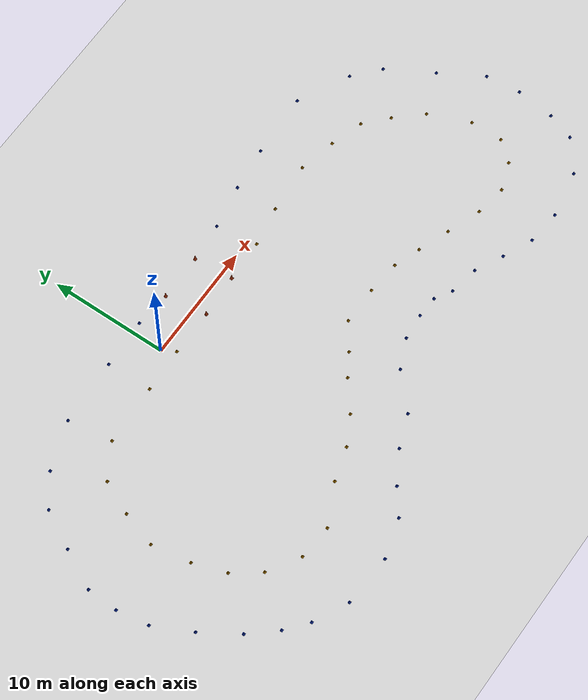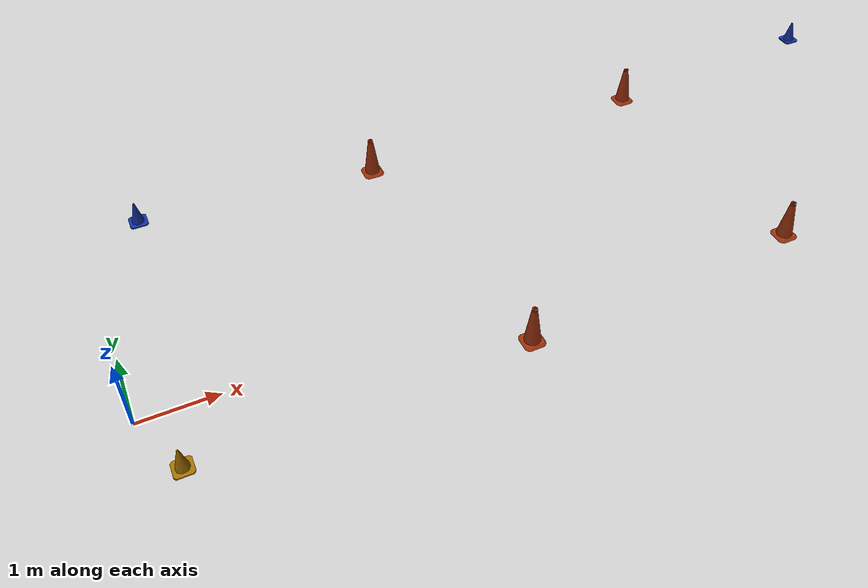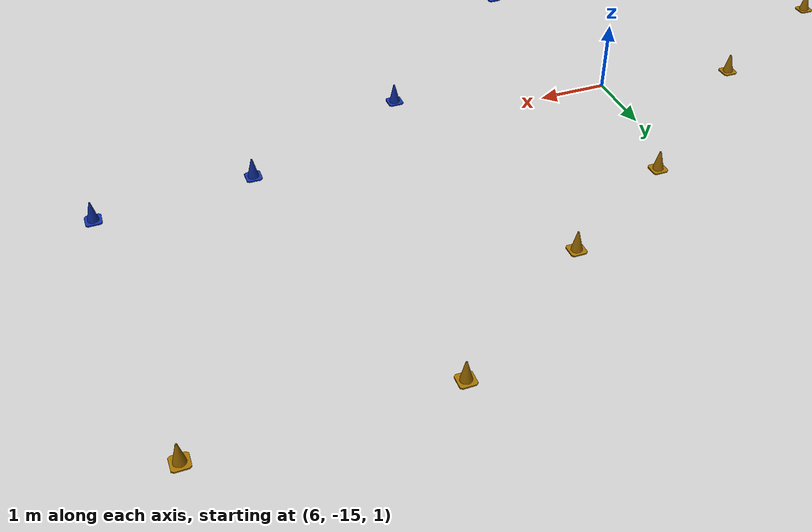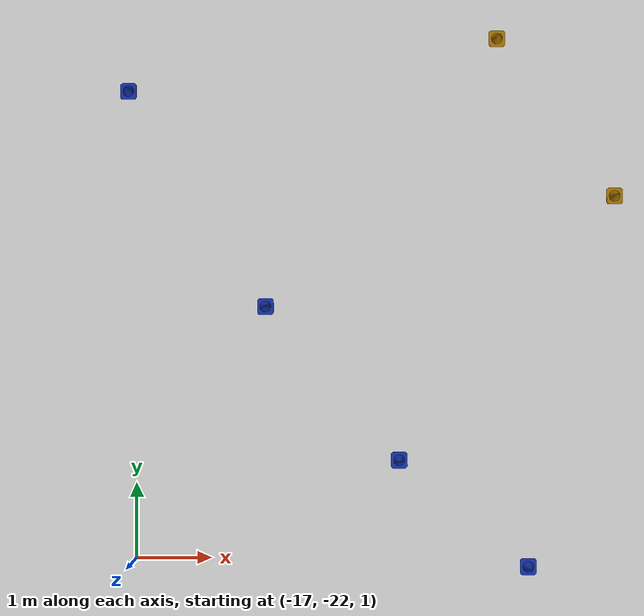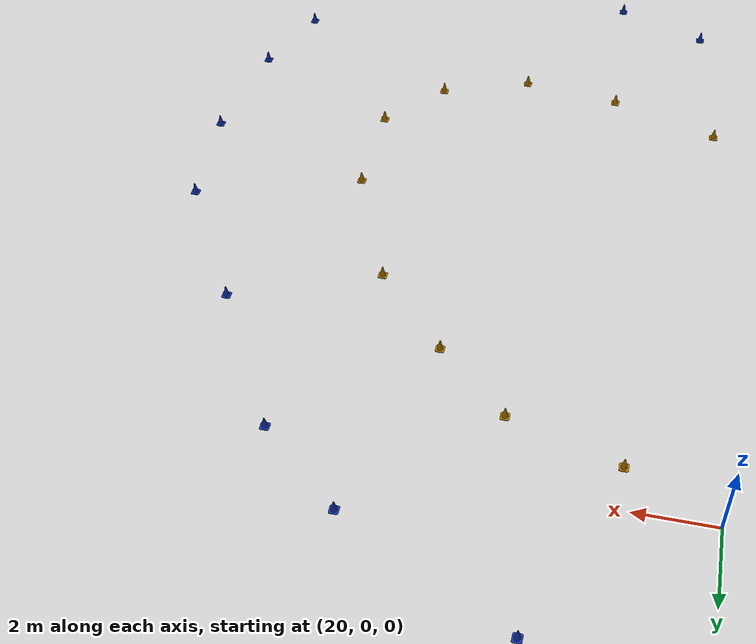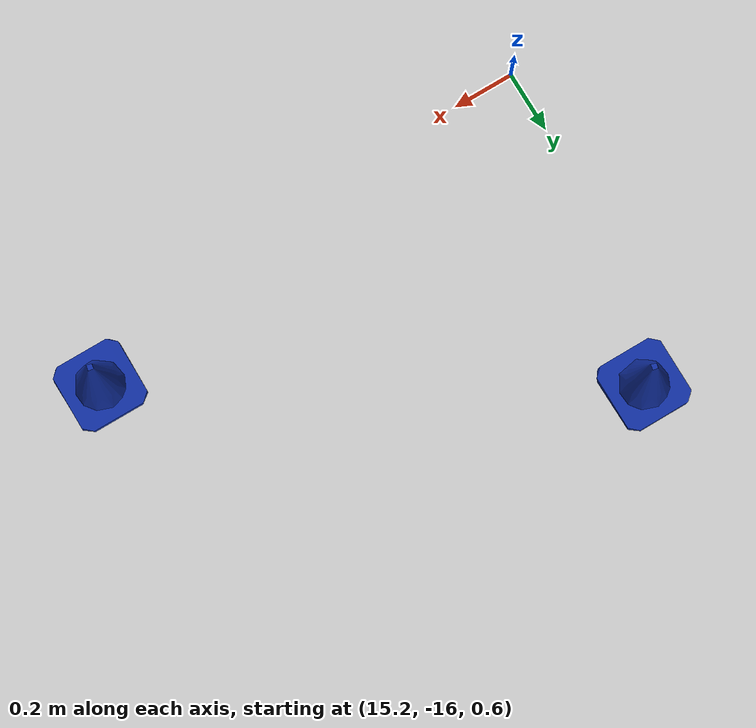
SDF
<sdf version='1.6'>
  <world name='B_shape_02_03_2023'>
    <gui fullscreen='0'>
      <camera name='user_camera'>
        <pose frame=''>-40 40 20 0 0.667643 -1</pose>
        <view_controller>orbit</view_controller>
        <projection_type>perspective</projection_type>
      </camera>
    </gui>

    <!-- WORLD SETTINGS -->
    <scene>
      <ambient>1.0 1.0 1.0 1.0</ambient>
      <shadows>false</shadows>
    </scene>

    <spherical_coordinates>
      <heading_deg>180</heading_deg>

      <!-- Appleton Tower coordinates -->
      <latitude_deg>-27.69056</latitude_deg>
      <longitude_deg>152.656715</longitude_deg>
    </spherical_coordinates>

    <light name='sun' type='directional'>
      <cast_shadows>1</cast_shadows>
      <pose frame=''>0 0 10 0 -0 0</pose>
      <diffuse>0.8 0.8 0.8 1</diffuse>
      <specular>0.1 0.1 0.1 1</specular>
      <attenuation>
        <range>1000</range>
        <constant>0.9</constant>
        <linear>0.01</linear>
        <quadratic>0.001</quadratic>
      </attenuation>
      <direction>-0.5 0.5 -1</direction>
    </light>

    <!-- MODELS -->
    <include>
      <uri>model://ground_plane</uri>
      <pose>0.0 0.0 0.0 0 0 0</pose>
    </include>

    <include>
      <uri>model://B_shape_02_03_2023</uri>
      <pose>0 0 0.5 0 0 0</pose>
    </include>

  </world>
</sdf>

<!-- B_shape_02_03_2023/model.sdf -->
<sdf version='1.6'>
  <model name='track'>

    <include>
      <pose>8.887313479968094 -16.183617006526468 0.15 0 0 0</pose>
      <uri>model://blue_cone</uri>
      <name>blue_cone_0</name>

      <covariance x="0.1" y="0.1" xy="0"/>

    </include>

    <include>
      <pose>11.355381936956617 -15.078430863667466 0.15 0 0 0</pose>
      <uri>model://blue_cone</uri>
      <name>blue_cone_1</name>

      <covariance x="0.1" y="0.1" xy="0"/>

    </include>

    <include>
      <pose>6.129761087675673 -18.71671183658031 0.15 0 0 0</pose>
      <uri>model://blue_cone</uri>
      <name>blue_cone_2</name>

      <covariance x="0.1" y="0.1" xy="0"/>

    </include>

    <include>
      <pose>10.97108972454437 2.540551507268548 0.15 0 0 0</pose>
      <uri>model://blue_cone</uri>
      <name>blue_cone_3</name>

      <covariance x="0.1" y="0.1" xy="0"/>

    </include>

    <include>
      <pose>14.705757930120129 3.200382692569994 0.15 0 0 0</pose>
      <uri>model://blue_cone</uri>
      <name>blue_cone_4</name>

      <covariance x="0.1" y="0.1" xy="0"/>

    </include>

    <include>
      <pose>19.224267913437014 -16.223076266818254 0.15 0 0 0</pose>
      <uri>model://blue_cone</uri>
      <name>blue_cone_5</name>

      <covariance x="0.1" y="0.1" xy="0"/>

    </include>

    <include>
      <pose>13.555598803293863 -14.882089361770092 0.15 0 0 0</pose>
      <uri>model://blue_cone</uri>
      <name>blue_cone_6</name>

      <covariance x="0.1" y="0.1" xy="0"/>

    </include>

    <include>
      <pose>18.46512911431677 3.611936681390391 0.15 0 0 0</pose>
      <uri>model://blue_cone</uri>
      <name>blue_cone_7</name>

      <covariance x="0.1" y="0.1" xy="0"/>

    </include>

    <include>
      <pose>23.91557182886033 3.8447500610152714 0.15 0 0 0</pose>
      <uri>model://blue_cone</uri>
      <name>blue_cone_8</name>

      <covariance x="0.1" y="0.1" xy="0"/>

    </include>

    <include>
      <pose>21.53205070095937 -17.365783738526847 0.15 0 0 0</pose>
      <uri>model://blue_cone</uri>
      <name>blue_cone_9</name>

      <covariance x="0.1" y="0.1" xy="0"/>

    </include>

    <include>
      <pose>24.010217328592844 -18.458147981563787 0.15 0 0 0</pose>
      <uri>model://blue_cone</uri>
      <name>blue_cone_10</name>

      <covariance x="0.1" y="0.1" xy="0"/>

    </include>

    <include>
      <pose>30.30289956167453 -0.1520733119067148 0.15 0 0 0</pose>
      <uri>model://blue_cone</uri>
      <name>blue_cone_11</name>

      <covariance x="0.1" y="0.1" xy="0"/>

    </include>

    <include>
      <pose>28.202054858865274 1.6908487523626712 0.15 0 0 0</pose>
      <uri>model://blue_cone</uri>
      <name>blue_cone_12</name>

      <covariance x="0.1" y="0.1" xy="0"/>

    </include>

    <include>
      <pose>26.89986541691906 -18.73171205684963 0.15 0 0 0</pose>
      <uri>model://blue_cone</uri>
      <name>blue_cone_13</name>

      <covariance x="0.1" y="0.1" xy="0"/>

    </include>

    <include>
      <pose>32.44616829553408 -3.89350957027444 0.15 0 0 0</pose>
      <uri>model://blue_cone</uri>
      <name>blue_cone_14</name>

      <covariance x="0.1" y="0.1" xy="0"/>

    </include>

    <include>
      <pose>34.488565067148585 -7.420996699019813 0.15 0 0 0</pose>
      <uri>model://blue_cone</uri>
      <name>blue_cone_15</name>

      <covariance x="0.1" y="0.1" xy="0"/>

    </include>

    <include>
      <pose>30.893993117717656 -17.971382646359388 0.15 0 0 0</pose>
      <uri>model://blue_cone</uri>
      <name>blue_cone_16</name>

      <covariance x="0.1" y="0.1" xy="0"/>

    </include>

    <include>
      <pose>33.51427802876749 -15.954001022219344 0.15 0 0 0</pose>
      <uri>model://blue_cone</uri>
      <name>blue_cone_17</name>

      <covariance x="0.1" y="0.1" xy="0"/>

    </include>

    <include>
      <pose>34.334464677092946 -13.649916759117772 0.15 0 0 0</pose>
      <uri>model://blue_cone</uri>
      <name>blue_cone_18</name>

      <covariance x="0.1" y="0.1" xy="0"/>

    </include>

    <include>
      <pose>34.764652698345984 -10.376504859684642 0.15 0 0 0</pose>
      <uri>model://blue_cone</uri>
      <name>blue_cone_19</name>

      <covariance x="0.1" y="0.1" xy="0"/>

    </include>

    <include>
      <pose>16.752195360163245 -15.79402649685101 0.15 0 0 0</pose>
      <uri>model://blue_cone</uri>
      <name>blue_cone_20</name>

      <covariance x="0.1" y="0.1" xy="0"/>

    </include>

    <include>
      <pose>15.371102133759388 -14.972401310864552 0.15 0 0 0</pose>
      <uri>model://blue_cone</uri>
      <name>blue_cone_21</name>

      <covariance x="0.1" y="0.1" xy="0"/>

    </include>

    <include>
      <pose>0.7479325607489322 -21.335229593444485 0.15 0 0 0</pose>
      <uri>model://blue_cone</uri>
      <name>blue_cone_22</name>

      <covariance x="0.1" y="0.1" xy="0"/>

    </include>

    <include>
      <pose>3.38286758891689 -19.78099268128012 0.15 0 0 0</pose>
      <uri>model://blue_cone</uri>
      <name>blue_cone_23</name>

      <covariance x="0.1" y="0.1" xy="0"/>

    </include>

    <include>
      <pose>-1.2972460496698035 -22.875287201913828 0.15 0 0 0</pose>
      <uri>model://blue_cone</uri>
      <name>blue_cone_24</name>

      <covariance x="0.1" y="0.1" xy="0"/>

    </include>

    <include>
      <pose>-4.582756564795467 -23.84405256174741 0.15 0 0 0</pose>
      <uri>model://blue_cone</uri>
      <name>blue_cone_25</name>

      <covariance x="0.1" y="0.1" xy="0"/>

    </include>

    <include>
      <pose>-8.87564627129861 -23.59748415390764 0.15 0 0 0</pose>
      <uri>model://blue_cone</uri>
      <name>blue_cone_26</name>

      <covariance x="0.1" y="0.1" xy="0"/>

    </include>

    <include>
      <pose>-17.31221143829038 -4.100999614205691 0.15 0 0 0</pose>
      <uri>model://blue_cone</uri>
      <name>blue_cone_27</name>

      <covariance x="0.1" y="0.1" xy="0"/>

    </include>

    <include>
      <pose>-17.166935666788472 -15.653699236050224 0.15 0 0 0</pose>
      <uri>model://blue_cone</uri>
      <name>blue_cone_28</name>

      <covariance x="0.1" y="0.1" xy="0"/>

    </include>

    <include>
      <pose>-15.287665294782336 -18.63537345200825 0.15 0 0 0</pose>
      <uri>model://blue_cone</uri>
      <name>blue_cone_29</name>

      <covariance x="0.1" y="0.1" xy="0"/>

    </include>

    <include>
      <pose>-18.97964032983754 -7.267119402834996 0.15 0 0 0</pose>
      <uri>model://blue_cone</uri>
      <name>blue_cone_30</name>

      <covariance x="0.1" y="0.1" xy="0"/>

    </include>

    <include>
      <pose>-13.46889059902812 -20.746073927804503 0.15 0 0 0</pose>
      <uri>model://blue_cone</uri>
      <name>blue_cone_31</name>

      <covariance x="0.1" y="0.1" xy="0"/>

    </include>

    <include>
      <pose>-18.684962461727324 -12.54920287759169 0.15 0 0 0</pose>
      <uri>model://blue_cone</uri>
      <name>blue_cone_32</name>

      <covariance x="0.1" y="0.1" xy="0"/>

    </include>

    <include>
      <pose>-11.723341671996511 -22.1994189693695 0.15 0 0 0</pose>
      <uri>model://blue_cone</uri>
      <name>blue_cone_33</name>

      <covariance x="0.1" y="0.1" xy="0"/>

    </include>

    <include>
      <pose>-19.102566912414304 -9.87990988065231 0.15 0 0 0</pose>
      <uri>model://blue_cone</uri>
      <name>blue_cone_34</name>

      <covariance x="0.1" y="0.1" xy="0"/>

    </include>

    <include>
      <pose>-15.605626367242976 -1.0606907686041755 0.15 0 0 0</pose>
      <uri>model://blue_cone</uri>
      <name>blue_cone_35</name>

      <covariance x="0.1" y="0.1" xy="0"/>

    </include>

    <include>
      <pose>-3.449828718013473 2.3890296989523727 0.15 0 0 0</pose>
      <uri>model://blue_cone</uri>
      <name>blue_cone_36</name>

      <covariance x="0.1" y="0.1" xy="0"/>

    </include>

    <include>
      <pose>-13.045736526819809 0.744502726286732 0.15 0 0 0</pose>
      <uri>model://blue_cone</uri>
      <name>blue_cone_37</name>

      <covariance x="0.1" y="0.1" xy="0"/>

    </include>

    <include>
      <pose>-8.97648601950662 2.1308191948487107 0.15 0 0 0</pose>
      <uri>model://blue_cone</uri>
      <name>blue_cone_38</name>

      <covariance x="0.1" y="0.1" xy="0"/>

    </include>

    <include>
      <pose>0.6979783031949934 2.535245398878675 0.15 0 0 0</pose>
      <uri>model://blue_cone</uri>
      <name>blue_cone_39</name>

      <covariance x="0.1" y="0.1" xy="0"/>

    </include>

    <include>
      <pose>11.468472458131686 -0.9360001125060364 0.15 0 0 0</pose>
      <uri>model://yellow_cone</uri>
      <name>yellow_cone_40</name>

      <covariance x="0.1" y="0.1" xy="0"/>

    </include>

    <include>
      <pose>16.06780649064805 -10.854725752244018 0.15 0 0 0</pose>
      <uri>model://yellow_cone</uri>
      <name>yellow_cone_41</name>

      <covariance x="0.1" y="0.1" xy="0"/>

    </include>

    <include>
      <pose>10.0406176654997 -10.584643051871108 0.15 0 0 0</pose>
      <uri>model://yellow_cone</uri>
      <name>yellow_cone_42</name>

      <covariance x="0.1" y="0.1" xy="0"/>

    </include>

    <include>
      <pose>7.877011261774623 -12.124812092269304 0.15 0 0 0</pose>
      <uri>model://yellow_cone</uri>
      <name>yellow_cone_43</name>

      <covariance x="0.1" y="0.1" xy="0"/>

    </include>

    <include>
      <pose>6.015898331258474 -13.270254208779294 0.15 0 0 0</pose>
      <uri>model://yellow_cone</uri>
      <name>yellow_cone_44</name>

      <covariance x="0.1" y="0.1" xy="0"/>

    </include>

    <include>
      <pose>14.84107438078909 -0.3431466819815326 0.15 0 0 0</pose>
      <uri>model://yellow_cone</uri>
      <name>yellow_cone_45</name>

      <covariance x="0.1" y="0.1" xy="0"/>

    </include>

    <include>
      <pose>18.28084439003365 -11.65220775612483 0.15 0 0 0</pose>
      <uri>model://yellow_cone</uri>
      <name>yellow_cone_46</name>

      <covariance x="0.1" y="0.1" xy="0"/>

    </include>

    <include>
      <pose>19.105007357788264 0.0174158175978228 0.15 0 0 0</pose>
      <uri>model://yellow_cone</uri>
      <name>yellow_cone_47</name>

      <covariance x="0.1" y="0.1" xy="0"/>

    </include>

    <include>
      <pose>13.22732663367704 -10.578139932920129 0.15 0 0 0</pose>
      <uri>model://yellow_cone</uri>
      <name>yellow_cone_48</name>

      <covariance x="0.1" y="0.1" xy="0"/>

    </include>

    <include>
      <pose>22.266810349987068 -0.6789893768652853 0.15 0 0 0</pose>
      <uri>model://yellow_cone</uri>
      <name>yellow_cone_49</name>

      <covariance x="0.1" y="0.1" xy="0"/>

    </include>

    <include>
      <pose>20.89868567554481 -12.629036818324826 0.15 0 0 0</pose>
      <uri>model://yellow_cone</uri>
      <name>yellow_cone_50</name>

      <covariance x="0.1" y="0.1" xy="0"/>

    </include>

    <include>
      <pose>23.78304693968496 -13.672366428767674 0.15 0 0 0</pose>
      <uri>model://yellow_cone</uri>
      <name>yellow_cone_51</name>

      <covariance x="0.1" y="0.1" xy="0"/>

    </include>

    <include>
      <pose>26.422463395975644 -14.061234370496011 0.15 0 0 0</pose>
      <uri>model://yellow_cone</uri>
      <name>yellow_cone_52</name>

      <covariance x="0.1" y="0.1" xy="0"/>

    </include>

    <include>
      <pose>28.78607839688154 -13.202026810862783 0.15 0 0 0</pose>
      <uri>model://yellow_cone</uri>
      <name>yellow_cone_53</name>

      <covariance x="0.1" y="0.1" xy="0"/>

    </include>

    <include>
      <pose>25.05141683524537 -1.5405924617018223 0.15 0 0 0</pose>
      <uri>model://yellow_cone</uri>
      <name>yellow_cone_54</name>

      <covariance x="0.1" y="0.1" xy="0"/>

    </include>

    <include>
      <pose>28.80555090980613 -5.362886682323164 0.15 0 0 0</pose>
      <uri>model://yellow_cone</uri>
      <name>yellow_cone_55</name>

      <covariance x="0.1" y="0.1" xy="0"/>

    </include>

    <include>
      <pose>26.89877751229561 -3.2393641737358734 0.15 0 0 0</pose>
      <uri>model://yellow_cone</uri>
      <name>yellow_cone_56</name>

      <covariance x="0.1" y="0.1" xy="0"/>

    </include>

    <include>
      <pose>30.204180485092028 -11.539629859715207 0.15 0 0 0</pose>
      <uri>model://yellow_cone</uri>
      <name>yellow_cone_57</name>

      <covariance x="0.1" y="0.1" xy="0"/>

    </include>

    <include>
      <pose>30.20334220799701 -8.793293920399233 0.15 0 0 0</pose>
      <uri>model://yellow_cone</uri>
      <name>yellow_cone_58</name>

      <covariance x="0.1" y="0.1" xy="0"/>

    </include>

    <include>
      <pose>3.632719947367883 -15.149685328412486 0.15 0 0 0</pose>
      <uri>model://yellow_cone</uri>
      <name>yellow_cone_59</name>

      <covariance x="0.1" y="0.1" xy="0"/>

    </include>

    <include>
      <pose>1.2362219475216631 -16.44181942249454 0.15 0 0 0</pose>
      <uri>model://yellow_cone</uri>
      <name>yellow_cone_60</name>

      <covariance x="0.1" y="0.1" xy="0"/>

    </include>

    <include>
      <pose>-1.5848912639562354 -17.29125779691395 0.15 0 0 0</pose>
      <uri>model://yellow_cone</uri>
      <name>yellow_cone_61</name>

      <covariance x="0.1" y="0.1" xy="0"/>

    </include>

    <include>
      <pose>-12.976930503284644 -12.229239949555916 0.15 0 0 0</pose>
      <uri>model://yellow_cone</uri>
      <name>yellow_cone_62</name>

      <covariance x="0.1" y="0.1" xy="0"/>

    </include>

    <include>
      <pose>-10.478809117368606 -17.140375728705344 0.15 0 0 0</pose>
      <uri>model://yellow_cone</uri>
      <name>yellow_cone_63</name>

      <covariance x="0.1" y="0.1" xy="0"/>

    </include>

    <include>
      <pose>-12.565405132326593 -6.01423642306195 0.15 0 0 0</pose>
      <uri>model://yellow_cone</uri>
      <name>yellow_cone_64</name>

      <covariance x="0.1" y="0.1" xy="0"/>

    </include>

    <include>
      <pose>-12.075702885402984 -14.948970175902096 0.15 0 0 0</pose>
      <uri>model://yellow_cone</uri>
      <name>yellow_cone_65</name>

      <covariance x="0.1" y="0.1" xy="0"/>

    </include>

    <include>
      <pose>-11.292841495469418 -3.2866141472082613 0.15 0 0 0</pose>
      <uri>model://yellow_cone</uri>
      <name>yellow_cone_66</name>

      <covariance x="0.1" y="0.1" xy="0"/>

    </include>

    <include>
      <pose>-4.986604344829674 -18.953290048623067 0.15 0 0 0</pose>
      <uri>model://yellow_cone</uri>
      <name>yellow_cone_67</name>

      <covariance x="0.1" y="0.1" xy="0"/>

    </include>

    <include>
      <pose>-7.902698836064323 -18.727220525284107 0.15 0 0 0</pose>
      <uri>model://yellow_cone</uri>
      <name>yellow_cone_68</name>

      <covariance x="0.1" y="0.1" xy="0"/>

    </include>

    <include>
      <pose>-13.50331003621547 -8.946371676598947 0.15 0 0 0</pose>
      <uri>model://yellow_cone</uri>
      <name>yellow_cone_69</name>

      <covariance x="0.1" y="0.1" xy="0"/>

    </include>

    <include>
      <pose>-8.429610437222193 -1.603955174348973 0.15 0 0 0</pose>
      <uri>model://yellow_cone</uri>
      <name>yellow_cone_70</name>

      <covariance x="0.1" y="0.1" xy="0"/>

    </include>

    <include>
      <pose>-3.3467374176215867 -1.405448413285591 0.15 0 0 0</pose>
      <uri>model://yellow_cone</uri>
      <name>yellow_cone_71</name>

      <covariance x="0.1" y="0.1" xy="0"/>

    </include>

    <include>
      <pose>0.3853630953983769 -1.260936137647606 0.15 0 0 0</pose>
      <uri>model://yellow_cone</uri>
      <name>yellow_cone_72</name>

      <covariance x="0.1" y="0.1" xy="0"/>

    </include>

    <include>
      <pose>7.905532587261057 -1.0694545388030303 0.15 0 0 0</pose>
      <uri>model://big_cone</uri>
      <name>big_cone_73</name>

      <covariance x="0.1" y="0.1" xy="0"/>

    </include>

    <include>
      <pose>4.257676399974418 -1.2694734643626395 0.15 0 0 0</pose>
      <uri>model://big_cone</uri>
      <name>big_cone_74</name>

      <covariance x="0.1" y="0.1" xy="0"/>

    </include>

    <include>
      <pose>3.7317812660231446 2.2237115741108457 0.15 0 0 0</pose>
      <uri>model://big_cone</uri>
      <name>big_cone_75</name>

      <covariance x="0.1" y="0.1" xy="0"/>

    </include>

    <include>
      <pose>7.657721175730245 2.2378548205586704 0.15 0 0 0</pose>
      <uri>model://big_cone</uri>
      <name>big_cone_76</name>

      <covariance x="0.1" y="0.1" xy="0"/>

    </include>

    <static>0</static>
    <allow_auto_disable>1</allow_auto_disable>
  </model>
</sdf>

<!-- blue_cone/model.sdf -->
<sdf version='1.6'>
  <model name='blue_cone'>
    <link name='link'>
      <pose frame=''>0 0 0 0 0 0</pose>
      <inertial>
        <inertia>
          <ixx>0.0016</ixx>
          <ixy>0</ixy>
          <ixz>0</ixz>
          <iyy>0.0016</iyy>
          <iyz>0</iyz>
          <izz>0.0010</izz>
        </inertia>
        <mass>0.45</mass>
      </inertial>
      <visual name='visual'>
        <geometry>
          <mesh>
            <uri>model://cone_blue.dae</uri>
          </mesh>
        </geometry>
        <cast_shadows>1</cast_shadows>
      </visual>
      <collision name='collision'>
        <max_contacts>3</max_contacts>
        <geometry>
          <mesh>
            <uri>model://cone_blue.dae</uri>
          </mesh>
        </geometry>
      </collision>
    </link>
  </model>
</sdf>

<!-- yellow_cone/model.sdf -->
<sdf version='1.6'>
  <model name='yellow_cone'>
    <link name='link'>
      <pose frame=''>0 0 0 0 0 0</pose>
      <inertial>
        <inertia>
          <ixx>0.0016</ixx>
          <ixy>0</ixy>
          <ixz>0</ixz>
          <iyy>0.0016</iyy>
          <iyz>0</iyz>
          <izz>0.0010</izz>
        </inertia>
        <mass>0.45</mass>
      </inertial>
      <visual name='visual'>
        <geometry>
          <mesh>
            <uri>model://cone_yellow.dae</uri>
          </mesh>
        </geometry>
        <cast_shadows>1</cast_shadows>
      </visual>
      <collision name='collision'>
        <max_contacts>3</max_contacts>
        <geometry>
          <mesh>
            <uri>model://cone_yellow.dae</uri>
          </mesh>
        </geometry>
      </collision>
    </link>
  </model>
</sdf>

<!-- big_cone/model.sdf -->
<sdf version='1.6'>
  <model name='big_cone'>
    <link name='link'>
      <pose frame=''>0 0 0 0 0 0</pose>
      <inertial>
        <inertia>
          <ixx>0.0016</ixx>
          <ixy>0</ixy>
          <ixz>0</ixz>
          <iyy>0.0016</iyy>
          <iyz>0</iyz>
          <izz>0.0010</izz>
        </inertia>
        <mass>0.45</mass>
      </inertial>
      <visual name='visual'>
        <geometry>
          <mesh>
            <uri>model://cone_big.dae</uri>
          </mesh>
        </geometry>
        <cast_shadows>1</cast_shadows>
      </visual>
      <collision name='collision'>
        <max_contacts>3</max_contacts>
        <geometry>
          <mesh>
            <uri>model://cone_big.dae</uri>
          </mesh>
        </geometry>
      </collision>
    </link>
  </model>
</sdf>
